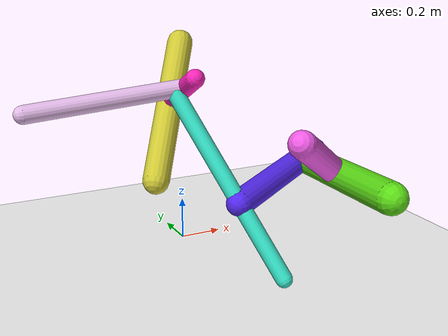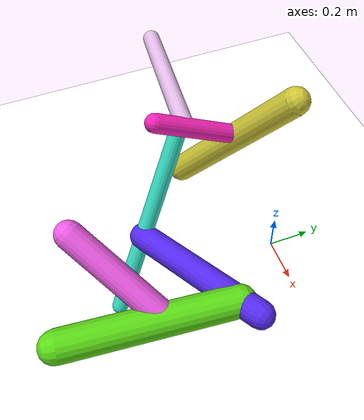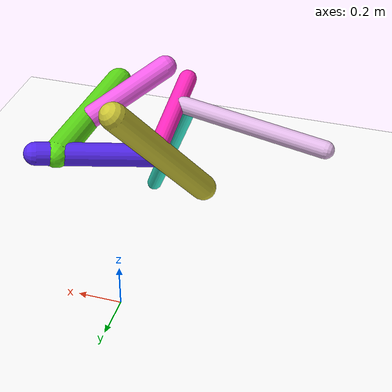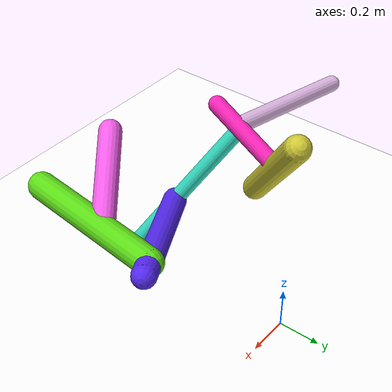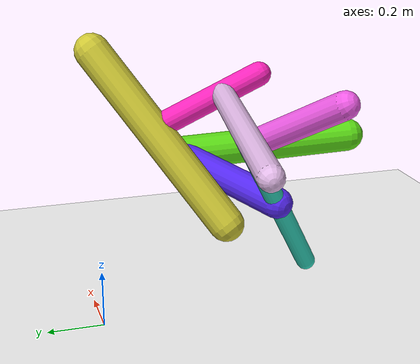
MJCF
<mujoco model="morphology">
  <option timestep="0.01"/>
  <default>
    <default class="/"/>
    <default class="0/"/>
    <default class="0/1/"/>
    <default class="0/1/2/"/>
    <default class="0/1/2/3/"/>
    <default class="0/1/2/3/4/"/>
    <default class="0/1/2/3/4/5/"/>
    <default class="0/1/2/3/4/5/6/"/>
  </default>
  <asset>
    <texture name="texplane" type="2d" builtin="checker" rgb1="0.10000000000000001 0.20000000000000001 0.29999999999999999" rgb2="0.20000000000000001 0.29999999999999999 0.40000000000000002" width="300" height="300"/>
    <material name="MatPlane" class="/" texture="texplane" texrepeat="20 20" specular="1" shininess="1" reflectance="0.5"/>
  </asset>
  <worldbody>
    <light name="//unnamed_light_0" class="/" directional="true" pos="0 0 1.5" dir="0 0 -1.3" cutoff="100" exponent="1" diffuse="1 1 1" specular="0.10000000000000001 0.10000000000000001 0.10000000000000001"/>
    <geom name="ground" class="/" type="plane" size="15 15 0.5" material="MatPlane" rgba="1 1 1 1"/>
    <site name="body" class="/" size="9.9999999999999995e-07 9.9999999999999995e-07 9.9999999999999995e-07" pos="0 0 0.97434798479080198"/>
    <body pos="0 0 0.97434798479080198" name="0/">
      <freejoint name="0/"/>
      <geom name="0/geom" class="0/" type="capsule" contype="1" conaffinity="1" condim="3" size="0.057872219222353263" rgba="0.80635509217263823 0.77873157021039596 0.20931787358307474 1" friction="0.59999999999999998 0.10000000000000001 0.10000000000000001" fromto="0 0 0 -0.27617772418661085 -0.36212876178124825 -0.52749194779565611"/>
      <site name="0/end0" class="0/" size="0.0050000000000000001" pos="-0.27617772418661085 -0.36212876178124825 -0.52749194779565611"/>
      <site name="0/attach1" class="0/" size="9.9999999999999995e-07 9.9999999999999995e-07 9.9999999999999995e-07" pos="-0.12472534047355278 -0.16354191215622293 -0.23822201077091912"/>
      <body pos="-0.12472534047355278 -0.16354191215622293 -0.23822201077091912" name="0/1/">
        <joint name="0/1/joint/" class="0/" type="hinge" axis="0 1 0" limited="true" range="-37.289462190420785 37.289462190420785"/>
        <geom name="0/1/geom" class="0/1/" type="capsule" contype="1" conaffinity="1" condim="3" size="0.039376719076254584" rgba="0.98480712511017299 0.14162969336235265 0.73130021486714714 1" friction="0.59999999999999998 0.10000000000000001 0.10000000000000001" fromto="0 0 0 -0.031293509190578384 -0.34434178360595175 0.16433197757429308"/>
        <site name="0/1/end1" class="0/1/" size="0.0050000000000000001" pos="-0.031293509190578384 -0.34434178360595175 0.16433197757429308"/>
        <site name="0/1/attach2" class="0/1/" size="9.9999999999999995e-07 9.9999999999999995e-07 9.9999999999999995e-07" pos="-0.020458042518124015 -0.22511246044269601 0.10743156236739564"/>
        <body pos="-0.020458042518124015 -0.22511246044269601 0.10743156236739564" name="0/1/2/">
          <joint name="0/1/2/joint/" class="0/1/" type="hinge" axis="0.99665340165558425 -0.07377302280557485 0.035207074210740652" limited="true" range="-61.633206077633361 61.633206077633361"/>
          <geom name="0/1/2/geom" class="0/1/2/" type="capsule" contype="1" conaffinity="1" condim="3" size="0.038146468247583075" rgba="0.88653900766107163 0.72865546337051601 0.91029293389615451 1" friction="0.59999999999999998 0.10000000000000001 0.10000000000000001" fromto="0 0 0 -0.65524876433066792 0.078283870419732171 -0.064294565658278624"/>
          <site name="0/1/2/end2" class="0/1/2/" size="0.0050000000000000001" pos="-0.65524876433066792 0.078283870419732171 -0.064294565658278624"/>
          <site name="0/1/2/attach3" class="0/1/2/" size="9.9999999999999995e-07 9.9999999999999995e-07 9.9999999999999995e-07" pos="-0.054016509764785732 0.0064534596341775498 -0.0053002282839108867"/>
          <body pos="-0.054016509764785732 0.0064534596341775498 -0.0053002282839108867" name="0/1/2/3/">
            <joint name="0/1/2/3/joint/" class="0/1/2/" type="hinge" axis="-0.15278614892257453 -0.76370193592173841 0.62722862320432904" limited="true" range="-35.204734358843808 35.204734358843808"/>
            <geom name="0/1/2/3/geom" class="0/1/2/3/" type="capsule" contype="1" conaffinity="1" condim="3" size="0.035945679072339601" rgba="0.20956533729328886 0.88908621417705735 0.78513245365848916 1" friction="0.59999999999999998 0.10000000000000001 0.10000000000000001" fromto="0 0 0 0.29965405143941837 -0.42207359839482406 -0.73825730031970815"/>
            <site name="0/1/2/3/end3" class="0/1/2/3/" size="0.0050000000000000001" pos="0.29965405143941837 -0.42207359839482406 -0.73825730031970815"/>
            <site name="0/1/2/3/attach4" class="0/1/2/3/" size="9.9999999999999995e-07 9.9999999999999995e-07 9.9999999999999995e-07" pos="0.18004911345635152 -0.25360570577729724 -0.44358676876463365"/>
            <body pos="0.18004911345635152 -0.25360570577729724 -0.44358676876463365" name="0/1/2/3/4/">
              <joint name="0/1/2/3/4/joint/" class="0/1/2/3/" type="hinge" axis="0 -0.86813558877213626 0.49632710938176267" limited="true" range="-42.201327083180573 42.201327083180573"/>
              <geom name="0/1/2/3/4/geom" class="0/1/2/3/4/" type="capsule" contype="1" conaffinity="1" condim="3" size="0.056333598533788359" rgba="0.33026697753087819 0.15623869888870301 0.93768197925628605 1" friction="0.59999999999999998 0.10000000000000001 0.10000000000000001" fromto="0 0 0 0.54975388738936171 0.28595928579049223 0.083011630440400719"/>
              <site name="0/1/2/3/4/end4" class="0/1/2/3/4/" size="0.0050000000000000001" pos="0.54975388738936171 0.28595928579049223 0.083011630440400719"/>
              <site name="0/1/2/3/4/attach5" class="0/1/2/3/4/" size="9.9999999999999995e-07 9.9999999999999995e-07 9.9999999999999995e-07" pos="0.46292437437545048 0.24079415627243803 0.06990056454169645"/>
              <body pos="0.46292437437545048 0.24079415627243803 0.06990056454169645" name="0/1/2/3/4/5/">
                <joint name="0/1/2/3/4/5/joint/" class="0/1/2/3/4/" type="hinge" axis="0 -0.27878291570978475 0.96035414608796832" limited="true" range="-36.71042070502704 36.71042070502704"/>
                <geom name="0/1/2/3/4/5/geom" class="0/1/2/3/4/5/" type="capsule" contype="1" conaffinity="1" condim="3" size="0.066090155855660609" rgba="0.36023924000985841 0.86155763318978473 0.087107854317633238 1" friction="0.59999999999999998 0.10000000000000001 0.10000000000000001" fromto="0 0 0 -0.059871839650808667 -0.69373416588337644 0.033706123830760437"/>
                <site name="0/1/2/3/4/5/end5" class="0/1/2/3/4/5/" size="0.0050000000000000001" pos="-0.059871839650808667 -0.69373416588337644 0.033706123830760437"/>
                <site name="0/1/2/3/4/5/attach6" class="0/1/2/3/4/5/" size="9.9999999999999995e-07 9.9999999999999995e-07 9.9999999999999995e-07" pos="-0.024692778253506482 -0.2861148751224003 0.013901324001273717"/>
                <body pos="-0.024692778253506482 -0.2861148751224003 0.013901324001273717" name="0/1/2/3/4/5/6/">
                  <joint name="0/1/2/3/4/5/6/joint/" class="0/1/2/3/4/5/" type="hinge" axis="0 0.048529266134135204 0.99882176104071863" limited="true" range="-41.923110372842856 41.923110372842856"/>
                  <geom name="0/1/2/3/4/5/6/geom" class="0/1/2/3/4/5/6/" type="capsule" contype="1" conaffinity="1" condim="3" size="0.055489240286120761" rgba="0.94002590388183727 0.36028722790356327 0.90327785490952306 1" friction="0.59999999999999998 0.10000000000000001 0.10000000000000001" fromto="0 0 0 -0.33812720084140985 -0.25085055342435286 0.22814843247504446"/>
                  <site name="0/1/2/3/4/5/6/end6" class="0/1/2/3/4/5/6/" size="0.0050000000000000001" pos="-0.33812720084140985 -0.25085055342435286 0.22814843247504446"/>
                </body>
              </body>
            </body>
          </body>
        </body>
      </body>
      <camera name="0/iso" class="0/" mode="trackcom" pos="-2.2999999999999998 -2.2999999999999998 1" xyaxes="0.45000000000000001 -0.45000000000000001 0 0.29999999999999999 0.14999999999999999 0.93999999999999995"/>
    </body>
  </worldbody>
  <actuator>
    <motor name="0/1/motor" class="0/1/" ctrllimited="true" ctrlrange="-1 1" gear="88" joint="0/1/joint/"/>
    <motor name="0/1/2/motor" class="0/1/2/" ctrllimited="true" ctrlrange="-1 1" gear="59" joint="0/1/2/joint/"/>
    <motor name="0/1/2/3/motor" class="0/1/2/3/" ctrllimited="true" ctrlrange="-1 1" gear="97" joint="0/1/2/3/joint/"/>
    <motor name="0/1/2/3/4/motor" class="0/1/2/3/4/" ctrllimited="true" ctrlrange="-1 1" gear="69" joint="0/1/2/3/4/joint/"/>
    <motor name="0/1/2/3/4/5/motor" class="0/1/2/3/4/5/" ctrllimited="true" ctrlrange="-1 1" gear="87" joint="0/1/2/3/4/5/joint/"/>
    <motor name="0/1/2/3/4/5/6/motor" class="0/1/2/3/4/5/6/" ctrllimited="true" ctrlrange="-1 1" gear="59" joint="0/1/2/3/4/5/6/joint/"/>
  </actuator>
  <sensor>
    <subtreelinvel name="velocity" body="0/"/>
  </sensor>
</mujoco>
